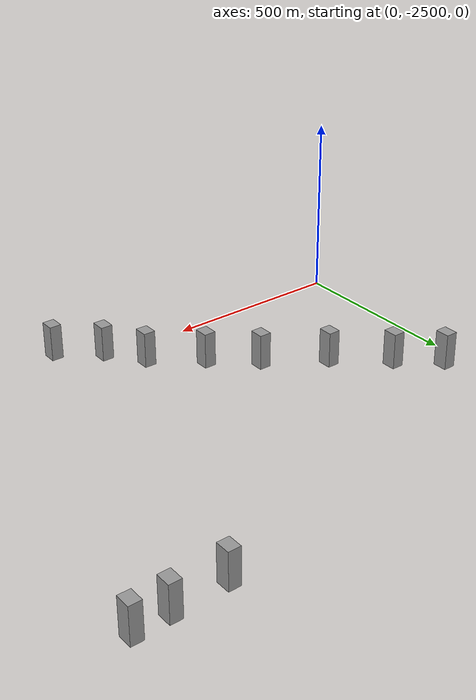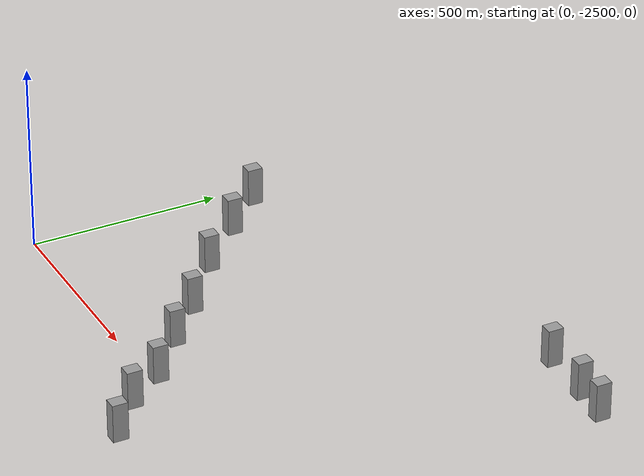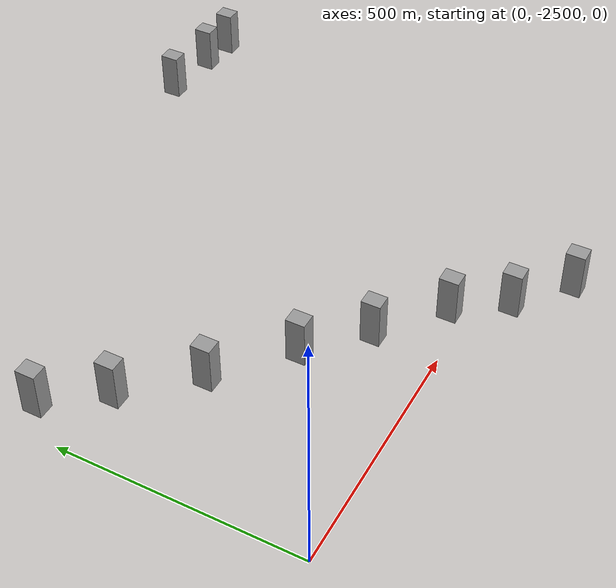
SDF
<sdf version="1.7">
 <world name="default">
  <model name="huge_building_1">
   <link name="link">
    <inertial>
     <mass>137299</mass>
     <inertia>
      <ixx>1.37911e+08</ixx>
      <ixy>0</ixy>
      <ixz>0</ixz>
      <iyy>1.32035e+08</iyy>
      <iyz>0</iyz>
      <izz>3.13216e+07</izz>
     </inertia>
    </inertial>
    <visual name="visual">
     <geometry><box><size>33.3468 40.3177 102.117</size></box></geometry>
     <material>
      <script><name>Gazebo/Grey</name><uri>file://media/materials/scripts/gazebo.material</uri></script>
      <shader type="pixel"/>
     </material>
    </visual>
    <collision name="collision">
     <geometry><box><size>33.3468 40.3177 102.117</size></box></geometry>
     <surface>
      <friction>
       <ode><mu>1</mu><mu2>1</mu2><fdir1>0 0 0</fdir1><slip1>0</slip1><slip2>0</slip2></ode>
       <torsional>
        <coefficient>1</coefficient>
        <patch_radius>0</patch_radius>
        <surface_radius>0</surface_radius>
        <use_patch_radius>1</use_patch_radius>
        <ode><slip>0</slip></ode>
       </torsional>
      </friction>
      <bounce><restitution_coefficient>0</restitution_coefficient><threshold>1e+06</threshold></bounce>
      <contact>
       <collide_without_contact>0</collide_without_contact>
       <collide_without_contact_bitmask>1</collide_without_contact_bitmask>
       <collide_bitmask>1</collide_bitmask>
       <ode>
        <soft_cfm>0</soft_cfm>
        <soft_erp>0.2</soft_erp>
        <kp>1e+13</kp>
        <kd>1</kd>
        <max_vel>0.01</max_vel>
        <min_depth>0</min_depth>
       </ode>
       <bullet>
        <split_impulse>1</split_impulse>
        <split_impulse_penetration_threshold>-0.01</split_impulse_penetration_threshold>
        <soft_cfm>0</soft_cfm>
        <soft_erp>0.2</soft_erp>
        <kp>1e+13</kp>
        <kd>1</kd>
       </bullet>
      </contact>
     </surface>
    </collision>
   </link>
   <static>0</static>
   <pose>1025.33 -1589.03 27 0 -0 0</pose>
  </model>
  <model name="huge_building_13">
   <link name="link">
    <inertial>
     <mass>137299</mass>
     <inertia>
      <ixx>1.37911e+08</ixx>
      <ixy>0</ixy>
      <ixz>0</ixz>
      <iyy>1.32035e+08</iyy>
      <iyz>0</iyz>
      <izz>3.13216e+07</izz>
     </inertia>
    </inertial>
    <visual name="visual">
     <geometry><box><size>33.3468 40.3177 102.117</size></box></geometry>
     <material>
      <script><name>Gazebo/Grey</name><uri>file://media/materials/scripts/gazebo.material</uri></script>
      <shader type="pixel"/>
     </material>
    </visual>
    <collision name="collision">
     <geometry><box><size>33.3468 40.3177 102.117</size></box></geometry>
     <surface>
      <friction>
       <ode><mu>1</mu><mu2>1</mu2><fdir1>0 0 0</fdir1><slip1>0</slip1><slip2>0</slip2></ode>
       <torsional>
        <coefficient>1</coefficient>
        <patch_radius>0</patch_radius>
        <surface_radius>0</surface_radius>
        <use_patch_radius>1</use_patch_radius>
        <ode><slip>0</slip></ode>
       </torsional>
      </friction>
      <bounce><restitution_coefficient>0</restitution_coefficient><threshold>1e+06</threshold></bounce>
      <contact>
       <collide_without_contact>0</collide_without_contact>
       <collide_without_contact_bitmask>1</collide_without_contact_bitmask>
       <collide_bitmask>1</collide_bitmask>
       <ode>
        <soft_cfm>0</soft_cfm>
        <soft_erp>0.2</soft_erp>
        <kp>1e+13</kp>
        <kd>1</kd>
        <max_vel>0.01</max_vel>
        <min_depth>0</min_depth>
       </ode>
       <bullet>
        <split_impulse>1</split_impulse>
        <split_impulse_penetration_threshold>-0.01</split_impulse_penetration_threshold>
        <soft_cfm>0</soft_cfm>
        <soft_erp>0.2</soft_erp>
        <kp>1e+13</kp>
        <kd>1</kd>
       </bullet>
      </contact>
     </surface>
    </collision>
   </link>
   <static>0</static>
   <pose>1168.46 -1590.58 18 0 -0 0</pose>
  </model>
  <model name="huge_building_14">
   <link name="link">
    <inertial>
     <mass>137299</mass>
     <inertia>
      <ixx>1.37911e+08</ixx>
      <ixy>0</ixy>
      <ixz>0</ixz>
      <iyy>1.32035e+08</iyy>
      <iyz>0</iyz>
      <izz>3.13216e+07</izz>
     </inertia>
    </inertial>
    <visual name="visual">
     <geometry><box><size>33.3468 40.3177 102.117</size></box></geometry>
     <material>
      <script><name>Gazebo/Grey</name><uri>file://media/materials/scripts/gazebo.material</uri></script>
      <shader type="pixel"/>
     </material>
    </visual>
    <collision name="collision">
     <geometry><box><size>33.3468 40.3177 102.117</size></box></geometry>
     <surface>
      <friction>
       <ode><mu>1</mu><mu2>1</mu2><fdir1>0 0 0</fdir1><slip1>0</slip1><slip2>0</slip2></ode>
       <torsional>
        <coefficient>1</coefficient>
        <patch_radius>0</patch_radius>
        <surface_radius>0</surface_radius>
        <use_patch_radius>1</use_patch_radius>
        <ode><slip>0</slip></ode>
       </torsional>
      </friction>
      <bounce><restitution_coefficient>0</restitution_coefficient><threshold>1e+06</threshold></bounce>
      <contact>
       <collide_without_contact>0</collide_without_contact>
       <collide_without_contact_bitmask>1</collide_without_contact_bitmask>
       <collide_bitmask>1</collide_bitmask>
       <ode>
        <soft_cfm>0</soft_cfm>
        <soft_erp>0.2</soft_erp>
        <kp>1e+13</kp>
        <kd>1</kd>
        <max_vel>0.01</max_vel>
        <min_depth>0</min_depth>
       </ode>
       <bullet>
        <split_impulse>1</split_impulse>
        <split_impulse_penetration_threshold>-0.01</split_impulse_penetration_threshold>
        <soft_cfm>0</soft_cfm>
        <soft_erp>0.2</soft_erp>
        <kp>1e+13</kp>
        <kd>1</kd>
       </bullet>
      </contact>
     </surface>
    </collision>
   </link>
   <static>0</static>
   <pose>1259.18 -1593.39 12 0 -0 0</pose>
  </model>
  <model name="huge_building_26">
   <link name="link">
    <inertial>
     <mass>137299</mass>
     <inertia>
      <ixx>1.37911e+08</ixx>
      <ixy>0</ixy>
      <ixz>0</ixz>
      <iyy>1.32035e+08</iyy>
      <iyz>0</iyz>
      <izz>3.13216e+07</izz>
     </inertia>
    </inertial>
    <visual name="visual">
     <geometry><box><size>33.3468 40.3177 102.117</size></box></geometry>
     <material>
      <script><name>Gazebo/Grey</name><uri>file://media/materials/scripts/gazebo.material</uri></script>
      <shader type="pixel"/>
     </material>
    </visual>
    <collision name="collision">
     <geometry><box><size>33.3468 40.3177 102.117</size></box></geometry>
     <surface>
      <friction>
       <ode><mu>1</mu><mu2>1</mu2><fdir1>0 0 0</fdir1><slip1>0</slip1><slip2>0</slip2></ode>
       <torsional>
        <coefficient>1</coefficient>
        <patch_radius>0</patch_radius>
        <surface_radius>0</surface_radius>
        <use_patch_radius>1</use_patch_radius>
        <ode><slip>0</slip></ode>
       </torsional>
      </friction>
      <bounce><restitution_coefficient>0</restitution_coefficient><threshold>1e+06</threshold></bounce>
      <contact>
       <collide_without_contact>0</collide_without_contact>
       <collide_without_contact_bitmask>1</collide_without_contact_bitmask>
       <collide_bitmask>1</collide_bitmask>
       <ode>
        <soft_cfm>0</soft_cfm>
        <soft_erp>0.2</soft_erp>
        <kp>1e+13</kp>
        <kd>1</kd>
        <max_vel>0.01</max_vel>
        <min_depth>0</min_depth>
       </ode>
       <bullet>
        <split_impulse>1</split_impulse>
        <split_impulse_penetration_threshold>-0.01</split_impulse_penetration_threshold>
        <soft_cfm>0</soft_cfm>
        <soft_erp>0.2</soft_erp>
        <kp>1e+13</kp>
        <kd>1</kd>
       </bullet>
      </contact>
     </surface>
    </collision>
   </link>
   <static>0</static>
   <pose>830.839 -2647.02 20 0 -0 0</pose>
  </model>
  <model name="huge_building_27">
   <link name="link">
    <inertial>
     <mass>137299</mass>
     <inertia>
      <ixx>1.37911e+08</ixx>
      <ixy>0</ixy>
      <ixz>0</ixz>
      <iyy>1.32035e+08</iyy>
      <iyz>0</iyz>
      <izz>3.13216e+07</izz>
     </inertia>
    </inertial>
    <visual name="visual">
     <geometry><box><size>33.3468 40.3177 102.117</size></box></geometry>
     <material>
      <script><name>Gazebo/Grey</name><uri>file://media/materials/scripts/gazebo.material</uri></script>
      <shader type="pixel"/>
     </material>
    </visual>
    <collision name="collision">
     <geometry><box><size>33.3468 40.3177 102.117</size></box></geometry>
     <surface>
      <friction>
       <ode><mu>1</mu><mu2>1</mu2><fdir1>0 0 0</fdir1><slip1>0</slip1><slip2>0</slip2></ode>
       <torsional>
        <coefficient>1</coefficient>
        <patch_radius>0</patch_radius>
        <surface_radius>0</surface_radius>
        <use_patch_radius>1</use_patch_radius>
        <ode><slip>0</slip></ode>
       </torsional>
      </friction>
      <bounce><restitution_coefficient>0</restitution_coefficient><threshold>1e+06</threshold></bounce>
      <contact>
       <collide_without_contact>0</collide_without_contact>
       <collide_without_contact_bitmask>1</collide_without_contact_bitmask>
       <collide_bitmask>1</collide_bitmask>
       <ode>
        <soft_cfm>0</soft_cfm>
        <soft_erp>0.2</soft_erp>
        <kp>1e+13</kp>
        <kd>1</kd>
        <max_vel>0.01</max_vel>
        <min_depth>0</min_depth>
       </ode>
       <bullet>
        <split_impulse>1</split_impulse>
        <split_impulse_penetration_threshold>-0.01</split_impulse_penetration_threshold>
        <soft_cfm>0</soft_cfm>
        <soft_erp>0.2</soft_erp>
        <kp>1e+13</kp>
        <kd>1</kd>
       </bullet>
      </contact>
     </surface>
    </collision>
   </link>
   <static>0</static>
   <pose>722.414 -2559.58 20 0 -0 0</pose>
  </model>
  <model name="huge_building_28">
   <link name="link">
    <inertial>
     <mass>137299</mass>
     <inertia>
      <ixx>1.37911e+08</ixx>
      <ixy>0</ixy>
      <ixz>0</ixz>
      <iyy>1.32035e+08</iyy>
      <iyz>0</iyz>
      <izz>3.13216e+07</izz>
     </inertia>
    </inertial>
    <visual name="visual">
     <geometry><box><size>33.3468 40.3177 102.117</size></box></geometry>
     <material>
      <script><name>Gazebo/Grey</name><uri>file://media/materials/scripts/gazebo.material</uri></script>
      <shader type="pixel"/>
     </material>
    </visual>
    <collision name="collision">
     <geometry><box><size>33.3468 40.3177 102.117</size></box></geometry>
     <surface>
      <friction>
       <ode><mu>1</mu><mu2>1</mu2><fdir1>0 0 0</fdir1><slip1>0</slip1><slip2>0</slip2></ode>
       <torsional>
        <coefficient>1</coefficient>
        <patch_radius>0</patch_radius>
        <surface_radius>0</surface_radius>
        <use_patch_radius>1</use_patch_radius>
        <ode><slip>0</slip></ode>
       </torsional>
      </friction>
      <bounce><restitution_coefficient>0</restitution_coefficient><threshold>1e+06</threshold></bounce>
      <contact>
       <collide_without_contact>0</collide_without_contact>
       <collide_without_contact_bitmask>1</collide_without_contact_bitmask>
       <collide_bitmask>1</collide_bitmask>
       <ode>
        <soft_cfm>0</soft_cfm>
        <soft_erp>0.2</soft_erp>
        <kp>1e+13</kp>
        <kd>1</kd>
        <max_vel>0.01</max_vel>
        <min_depth>0</min_depth>
       </ode>
       <bullet>
        <split_impulse>1</split_impulse>
        <split_impulse_penetration_threshold>-0.01</split_impulse_penetration_threshold>
        <soft_cfm>0</soft_cfm>
        <soft_erp>0.2</soft_erp>
        <kp>1e+13</kp>
        <kd>1</kd>
       </bullet>
      </contact>
     </surface>
    </collision>
   </link>
   <static>0</static>
   <pose>650.039 -2459.02 20 0 -0 0</pose>
  </model>
  <model name="huge_building_29">
   <link name="link">
    <inertial>
     <mass>137299</mass>
     <inertia>
      <ixx>1.37911e+08</ixx>
      <ixy>0</ixy>
      <ixz>0</ixz>
      <iyy>1.32035e+08</iyy>
      <iyz>0</iyz>
      <izz>3.13216e+07</izz>
     </inertia>
    </inertial>
    <visual name="visual">
     <geometry><box><size>33.3468 40.3177 102.117</size></box></geometry>
     <material>
      <script><name>Gazebo/Grey</name><uri>file://media/materials/scripts/gazebo.material</uri></script>
      <shader type="pixel"/>
     </material>
    </visual>
    <collision name="collision">
     <geometry><box><size>33.3468 40.3177 102.117</size></box></geometry>
     <surface>
      <friction>
       <ode><mu>1</mu><mu2>1</mu2><fdir1>0 0 0</fdir1><slip1>0</slip1><slip2>0</slip2></ode>
       <torsional>
        <coefficient>1</coefficient>
        <patch_radius>0</patch_radius>
        <surface_radius>0</surface_radius>
        <use_patch_radius>1</use_patch_radius>
        <ode><slip>0</slip></ode>
       </torsional>
      </friction>
      <bounce><restitution_coefficient>0</restitution_coefficient><threshold>1e+06</threshold></bounce>
      <contact>
       <collide_without_contact>0</collide_without_contact>
       <collide_without_contact_bitmask>1</collide_without_contact_bitmask>
       <collide_bitmask>1</collide_bitmask>
       <ode>
        <soft_cfm>0</soft_cfm>
        <soft_erp>0.2</soft_erp>
        <kp>1e+13</kp>
        <kd>1</kd>
        <max_vel>0.01</max_vel>
        <min_depth>0</min_depth>
       </ode>
       <bullet>
        <split_impulse>1</split_impulse>
        <split_impulse_penetration_threshold>-0.01</split_impulse_penetration_threshold>
        <soft_cfm>0</soft_cfm>
        <soft_erp>0.2</soft_erp>
        <kp>1e+13</kp>
        <kd>1</kd>
       </bullet>
      </contact>
     </surface>
    </collision>
   </link>
   <static>0</static>
   <pose>524.275 -2355.7 20 0 -0 0</pose>
  </model>
  <model name="huge_building_30">
   <link name="link">
    <inertial>
     <mass>137299</mass>
     <inertia>
      <ixx>1.37911e+08</ixx>
      <ixy>0</ixy>
      <ixz>0</ixz>
      <iyy>1.32035e+08</iyy>
      <iyz>0</iyz>
      <izz>3.13216e+07</izz>
     </inertia>
    </inertial>
    <visual name="visual">
     <geometry><box><size>33.3468 40.3177 102.117</size></box></geometry>
     <material>
      <script><name>Gazebo/Grey</name><uri>file://media/materials/scripts/gazebo.material</uri></script>
      <shader type="pixel"/>
     </material>
    </visual>
    <collision name="collision">
     <geometry><box><size>33.3468 40.3177 102.117</size></box></geometry>
     <surface>
      <friction>
       <ode><mu>1</mu><mu2>1</mu2><fdir1>0 0 0</fdir1><slip1>0</slip1><slip2>0</slip2></ode>
       <torsional>
        <coefficient>1</coefficient>
        <patch_radius>0</patch_radius>
        <surface_radius>0</surface_radius>
        <use_patch_radius>1</use_patch_radius>
        <ode><slip>0</slip></ode>
       </torsional>
      </friction>
      <bounce><restitution_coefficient>0</restitution_coefficient><threshold>1e+06</threshold></bounce>
      <contact>
       <collide_without_contact>0</collide_without_contact>
       <collide_without_contact_bitmask>1</collide_without_contact_bitmask>
       <collide_bitmask>1</collide_bitmask>
       <ode>
        <soft_cfm>0</soft_cfm>
        <soft_erp>0.2</soft_erp>
        <kp>1e+13</kp>
        <kd>1</kd>
        <max_vel>0.01</max_vel>
        <min_depth>0</min_depth>
       </ode>
       <bullet>
        <split_impulse>1</split_impulse>
        <split_impulse_penetration_threshold>-0.01</split_impulse_penetration_threshold>
        <soft_cfm>0</soft_cfm>
        <soft_erp>0.2</soft_erp>
        <kp>1e+13</kp>
        <kd>1</kd>
       </bullet>
      </contact>
     </surface>
    </collision>
   </link>
   <static>0</static>
   <pose>413.35 -2255.65 22 0 -0 0</pose>
  </model>
  <model name="huge_building_31">
   <link name="link">
    <inertial>
     <mass>137299</mass>
     <inertia>
      <ixx>1.37911e+08</ixx>
      <ixy>0</ixy>
      <ixz>0</ixz>
      <iyy>1.32035e+08</iyy>
      <iyz>0</iyz>
      <izz>3.13216e+07</izz>
     </inertia>
    </inertial>
    <visual name="visual">
     <geometry><box><size>33.3468 40.3177 102.117</size></box></geometry>
     <material>
      <script><name>Gazebo/Grey</name><uri>file://media/materials/scripts/gazebo.material</uri></script>
      <shader type="pixel"/>
     </material>
    </visual>
    <collision name="collision">
     <geometry><box><size>33.3468 40.3177 102.117</size></box></geometry>
     <surface>
      <friction>
       <ode><mu>1</mu><mu2>1</mu2><fdir1>0 0 0</fdir1><slip1>0</slip1><slip2>0</slip2></ode>
       <torsional>
        <coefficient>1</coefficient>
        <patch_radius>0</patch_radius>
        <surface_radius>0</surface_radius>
        <use_patch_radius>1</use_patch_radius>
        <ode><slip>0</slip></ode>
       </torsional>
      </friction>
      <bounce><restitution_coefficient>0</restitution_coefficient><threshold>1e+06</threshold></bounce>
      <contact>
       <collide_without_contact>0</collide_without_contact>
       <collide_without_contact_bitmask>1</collide_without_contact_bitmask>
       <collide_bitmask>1</collide_bitmask>
       <ode>
        <soft_cfm>0</soft_cfm>
        <soft_erp>0.2</soft_erp>
        <kp>1e+13</kp>
        <kd>1</kd>
        <max_vel>0.01</max_vel>
        <min_depth>0</min_depth>
       </ode>
       <bullet>
        <split_impulse>1</split_impulse>
        <split_impulse_penetration_threshold>-0.01</split_impulse_penetration_threshold>
        <soft_cfm>0</soft_cfm>
        <soft_erp>0.2</soft_erp>
        <kp>1e+13</kp>
        <kd>1</kd>
       </bullet>
      </contact>
     </surface>
    </collision>
   </link>
   <static>0</static>
   <pose>269.202 -2140.6 30 0 -0 0</pose>
  </model>
  <model name="huge_building_32">
   <link name="link">
    <inertial>
     <mass>137299</mass>
     <inertia>
      <ixx>1.37911e+08</ixx>
      <ixy>0</ixy>
      <ixz>0</ixz>
      <iyy>1.32035e+08</iyy>
      <iyz>0</iyz>
      <izz>3.13216e+07</izz>
     </inertia>
    </inertial>
    <visual name="visual">
     <geometry><box><size>33.3468 40.3177 102.117</size></box></geometry>
     <material>
      <script><name>Gazebo/Grey</name><uri>file://media/materials/scripts/gazebo.material</uri></script>
      <shader type="pixel"/>
     </material>
    </visual>
    <collision name="collision">
     <geometry><box><size>33.3468 40.3177 102.117</size></box></geometry>
     <surface>
      <friction>
       <ode><mu>1</mu><mu2>1</mu2><fdir1>0 0 0</fdir1><slip1>0</slip1><slip2>0</slip2></ode>
       <torsional>
        <coefficient>1</coefficient>
        <patch_radius>0</patch_radius>
        <surface_radius>0</surface_radius>
        <use_patch_radius>1</use_patch_radius>
        <ode><slip>0</slip></ode>
       </torsional>
      </friction>
      <bounce><restitution_coefficient>0</restitution_coefficient><threshold>1e+06</threshold></bounce>
      <contact>
       <collide_without_contact>0</collide_without_contact>
       <collide_without_contact_bitmask>1</collide_without_contact_bitmask>
       <collide_bitmask>1</collide_bitmask>
       <ode>
        <soft_cfm>0</soft_cfm>
        <soft_erp>0.2</soft_erp>
        <kp>1e+13</kp>
        <kd>1</kd>
        <max_vel>0.01</max_vel>
        <min_depth>0</min_depth>
       </ode>
       <bullet>
        <split_impulse>1</split_impulse>
        <split_impulse_penetration_threshold>-0.01</split_impulse_penetration_threshold>
        <soft_cfm>0</soft_cfm>
        <soft_erp>0.2</soft_erp>
        <kp>1e+13</kp>
        <kd>1</kd>
       </bullet>
      </contact>
     </surface>
    </collision>
   </link>
   <static>0</static>
   <pose>148.501 -2017.38 38 0 -0 0</pose>
  </model>
  <model name="huge_building_33">
   <link name="link">
    <inertial>
     <mass>137299</mass>
     <inertia>
      <ixx>1.37911e+08</ixx>
      <ixy>0</ixy>
      <ixz>0</ixz>
      <iyy>1.32035e+08</iyy>
      <iyz>0</iyz>
      <izz>3.13216e+07</izz>
     </inertia>
    </inertial>
    <visual name="visual">
     <geometry><box><size>33.3468 40.3177 102.117</size></box></geometry>
     <material>
      <script><name>Gazebo/Grey</name><uri>file://media/materials/scripts/gazebo.material</uri></script>
      <shader type="pixel"/>
     </material>
    </visual>
    <collision name="collision">
     <geometry><box><size>33.3468 40.3177 102.117</size></box></geometry>
     <surface>
      <friction>
       <ode><mu>1</mu><mu2>1</mu2><fdir1>0 0 0</fdir1><slip1>0</slip1><slip2>0</slip2></ode>
       <torsional>
        <coefficient>1</coefficient>
        <patch_radius>0</patch_radius>
        <surface_radius>0</surface_radius>
        <use_patch_radius>1</use_patch_radius>
        <ode><slip>0</slip></ode>
       </torsional>
      </friction>
      <bounce><restitution_coefficient>0</restitution_coefficient><threshold>1e+06</threshold></bounce>
      <contact>
       <collide_without_contact>0</collide_without_contact>
       <collide_without_contact_bitmask>1</collide_without_contact_bitmask>
       <collide_bitmask>1</collide_bitmask>
       <ode>
        <soft_cfm>0</soft_cfm>
        <soft_erp>0.2</soft_erp>
        <kp>1e+13</kp>
        <kd>1</kd>
        <max_vel>0.01</max_vel>
        <min_depth>0</min_depth>
       </ode>
       <bullet>
        <split_impulse>1</split_impulse>
        <split_impulse_penetration_threshold>-0.01</split_impulse_penetration_threshold>
        <soft_cfm>0</soft_cfm>
        <soft_erp>0.2</soft_erp>
        <kp>1e+13</kp>
        <kd>1</kd>
       </bullet>
      </contact>
     </surface>
    </collision>
   </link>
   <static>0</static>
   <pose>58.1126 -1915.78 50 0 -0 0</pose>
  </model>
 </world>
</sdf>
